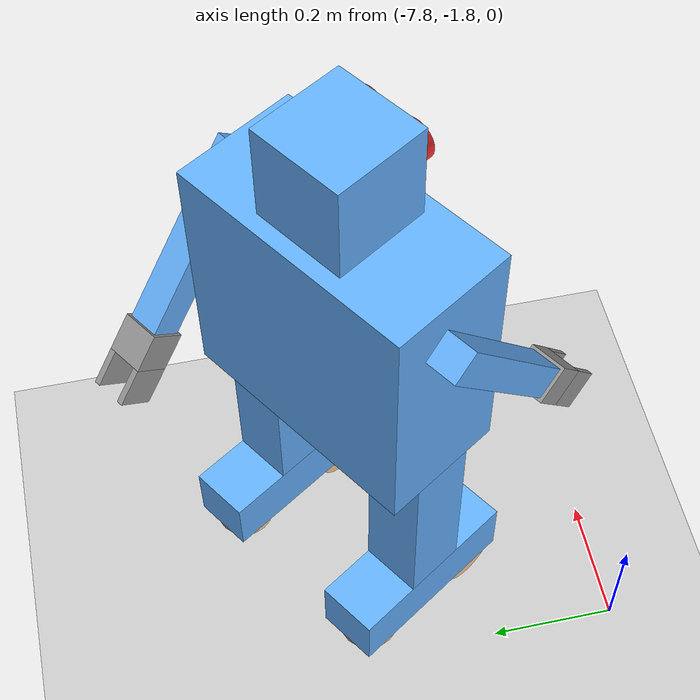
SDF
<sdf version="1.6">
 <world name="default">
  <model name="ground_plane">
   <static>1</static>
   <link name="link">
    <collision name="collision">
     <geometry><plane><normal>0 0 1</normal><size>100 100</size></plane></geometry>
     <surface><friction><ode><mu>100</mu><mu2>50</mu2></ode></friction></surface>
    </collision>
    <visual name="visual">
     <cast_shadows>0</cast_shadows>
     <geometry><plane><normal>0 0 1</normal><size>100 100</size></plane></geometry>
     <material>
      <script><uri>file://media/materials/scripts/gazebo.material</uri><name>Gazebo/Grey</name></script>
     </material>
    </visual>
   </link>
  </model>
  <model name="Vintage_Robot">
   <link name="link_0_clone">
    <pose>0.15 -0 0.1 0 -0 0</pose>
    <inertial>
     <mass>1</mass>
     <inertia>
      <ixx>0.166667</ixx>
      <ixy>0</ixy>
      <ixz>0</ixz>
      <iyy>0.166667</iyy>
      <iyz>0</iyz>
      <izz>0.166667</izz>
     </inertia>
    </inertial>
    <visual name="visual">
     <geometry><box><size>0.1 0.3 0.1</size></box></geometry>
     <material>
      <lighting>1</lighting>
      <script><uri>file://media/materials/scripts/gazebo.material</uri><name>Gazebo/Grey</name></script>
      <shader type="pixel"><normal_map>__default__</normal_map></shader>
      <ambient>0.4 0.7 1 1</ambient>
      <diffuse>0.7 0.7 0.7 1</diffuse>
      <specular>0.01 0.01 0.01 1</specular>
      <emissive>0 0 0 1</emissive>
     </material>
    </visual>
    <collision name="collision">
     <geometry><box><size>0.1 0.3 0.1</size></box></geometry>
     <surface>
      <friction>
       <ode><mu>1</mu><mu2>1</mu2><fdir1>0 0 0</fdir1><slip1>0</slip1><slip2>0</slip2></ode>
       <torsional>
        <coefficient>1</coefficient>
        <patch_radius>0</patch_radius>
        <surface_radius>0</surface_radius>
        <use_patch_radius>1</use_patch_radius>
        <ode><slip>0</slip></ode>
       </torsional>
      </friction>
      <bounce><restitution_coefficient>0</restitution_coefficient><threshold>1e+06</threshold></bounce>
      <contact>
       <collide_without_contact>0</collide_without_contact>
       <collide_without_contact_bitmask>1</collide_without_contact_bitmask>
       <collide_bitmask>1</collide_bitmask>
       <ode>
        <soft_cfm>0</soft_cfm>
        <soft_erp>0.2</soft_erp>
        <kp>1e+13</kp>
        <kd>1</kd>
        <max_vel>0.01</max_vel>
        <min_depth>0</min_depth>
       </ode>
       <bullet>
        <split_impulse>1</split_impulse>
        <split_impulse_penetration_threshold>-0.01</split_impulse_penetration_threshold>
        <soft_cfm>0</soft_cfm>
        <soft_erp>0.2</soft_erp>
        <kp>1e+13</kp>
        <kd>1</kd>
       </bullet>
      </contact>
     </surface>
    </collision>
   </link>
   <link name="link_0">
    <pose>0.225 0 0.75 0.7 -0 0</pose>
    <inertial>
     <mass>1</mass>
     <inertia>
      <ixx>0.166667</ixx>
      <ixy>0</ixy>
      <ixz>0</ixz>
      <iyy>0.166667</iyy>
      <iyz>0</iyz>
      <izz>0.166667</izz>
     </inertia>
    </inertial>
    <visual name="visual">
     <pose>0 0 -0.1 0 -0 0</pose>
     <geometry><box><size>0.05 0.05 0.3</size></box></geometry>
     <material>
      <lighting>1</lighting>
      <script><uri>file://media/materials/scripts/gazebo.material</uri><name>Gazebo/Grey</name></script>
      <shader type="pixel"><normal_map>__default__</normal_map></shader>
      <ambient>0.4 0.7 1 1</ambient>
      <diffuse>0.7 0.7 0.7 1</diffuse>
      <specular>0.01 0.01 0.01 1</specular>
      <emissive>0 0 0 1</emissive>
     </material>
    </visual>
    <collision name="collision">
     <pose>0 0 -0.1 0 -0 0</pose>
     <geometry><box><size>0.05 0.05 0.3</size></box></geometry>
     <surface>
      <friction>
       <ode><mu>1</mu><mu2>1</mu2><fdir1>0 0 0</fdir1><slip1>0</slip1><slip2>0</slip2></ode>
       <torsional>
        <coefficient>1</coefficient>
        <patch_radius>0</patch_radius>
        <surface_radius>0</surface_radius>
        <use_patch_radius>1</use_patch_radius>
        <ode><slip>0</slip></ode>
       </torsional>
      </friction>
      <bounce><restitution_coefficient>0</restitution_coefficient><threshold>1e+06</threshold></bounce>
      <contact>
       <collide_without_contact>0</collide_without_contact>
       <collide_without_contact_bitmask>1</collide_without_contact_bitmask>
       <collide_bitmask>1</collide_bitmask>
       <ode>
        <soft_cfm>0</soft_cfm>
        <soft_erp>0.2</soft_erp>
        <kp>1e+13</kp>
        <kd>1</kd>
        <max_vel>0.01</max_vel>
        <min_depth>0</min_depth>
       </ode>
       <bullet>
        <split_impulse>1</split_impulse>
        <split_impulse_penetration_threshold>-0.01</split_impulse_penetration_threshold>
        <soft_cfm>0</soft_cfm>
        <soft_erp>0.2</soft_erp>
        <kp>1e+13</kp>
        <kd>1</kd>
       </bullet>
      </contact>
     </surface>
    </collision>
   </link>
   <link name="link_0_0">
    <pose>0.04 0.08 0.945 1.5707 0 -3.14159</pose>
    <inertial>
     <mass>1</mass>
     <inertia><ixx>0.145833</ixx><ixy>0</ixy><ixz>0</ixz><iyy>0.145833</iyy><iyz>0</iyz><izz>0.125</izz></inertia>
    </inertial>
    <visual name="visual">
     <geometry><cylinder><radius>0.03</radius><length>0.03</length></cylinder></geometry>
     <material>
      <lighting>1</lighting>
      <script><uri>file://media/materials/scripts/gazebo.material</uri><name>Gazebo/Grey</name></script>
      <shader type="pixel"><normal_map>__default__</normal_map></shader>
      <ambient>1 0.2 0.2 1</ambient>
      <diffuse>0.7 0.7 0.7 1</diffuse>
      <specular>0.01 0.01 0.01 1</specular>
      <emissive>0 0 0 1</emissive>
     </material>
    </visual>
    <collision name="collision">
     <geometry><cylinder><radius>0.03</radius><length>0.03</length></cylinder></geometry>
     <surface>
      <friction>
       <ode><mu>1</mu><mu2>1</mu2><fdir1>0 0 0</fdir1><slip1>0</slip1><slip2>0</slip2></ode>
       <torsional>
        <coefficient>1</coefficient>
        <patch_radius>0</patch_radius>
        <surface_radius>0</surface_radius>
        <use_patch_radius>1</use_patch_radius>
        <ode><slip>0</slip></ode>
       </torsional>
      </friction>
      <bounce><restitution_coefficient>0</restitution_coefficient><threshold>1e+06</threshold></bounce>
      <contact>
       <collide_without_contact>0</collide_without_contact>
       <collide_without_contact_bitmask>1</collide_without_contact_bitmask>
       <collide_bitmask>1</collide_bitmask>
       <ode>
        <soft_cfm>0</soft_cfm>
        <soft_erp>0.2</soft_erp>
        <kp>1e+13</kp>
        <kd>1</kd>
        <max_vel>0.01</max_vel>
        <min_depth>0</min_depth>
       </ode>
       <bullet>
        <split_impulse>1</split_impulse>
        <split_impulse_penetration_threshold>-0.01</split_impulse_penetration_threshold>
        <soft_cfm>0</soft_cfm>
        <soft_erp>0.2</soft_erp>
        <kp>1e+13</kp>
        <kd>1</kd>
       </bullet>
      </contact>
     </surface>
    </collision>
   </link>
   <link name="link_0_0_clone">
    <pose>-0.04 0.08 0.945 1.5707 -0 5e-06</pose>
    <inertial>
     <mass>1</mass>
     <inertia><ixx>0.145833</ixx><ixy>0</ixy><ixz>0</ixz><iyy>0.145833</iyy><iyz>0</iyz><izz>0.125</izz></inertia>
    </inertial>
    <visual name="visual_0">
     <geometry><cylinder><radius>0.03</radius><length>0.03</length></cylinder></geometry>
     <material>
      <lighting>1</lighting>
      <script><uri>file://media/materials/scripts/gazebo.material</uri><name>Gazebo/Grey</name></script>
      <shader type="pixel"><normal_map>__default__</normal_map></shader>
      <ambient>1 0.2 0.2 1</ambient>
      <diffuse>0.7 0.7 0.7 1</diffuse>
      <specular>0.01 0.01 0.01 1</specular>
      <emissive>0 0 0 1</emissive>
     </material>
    </visual>
    <collision name="collision">
     <geometry><cylinder><radius>0.03</radius><length>0.03</length></cylinder></geometry>
     <surface>
      <friction>
       <ode><mu>1</mu><mu2>1</mu2><fdir1>0 0 0</fdir1><slip1>0</slip1><slip2>0</slip2></ode>
       <torsional>
        <coefficient>1</coefficient>
        <patch_radius>0</patch_radius>
        <surface_radius>0</surface_radius>
        <use_patch_radius>1</use_patch_radius>
        <ode><slip>0</slip></ode>
       </torsional>
      </friction>
      <bounce><restitution_coefficient>0</restitution_coefficient><threshold>1e+06</threshold></bounce>
      <contact>
       <collide_without_contact>0</collide_without_contact>
       <collide_without_contact_bitmask>1</collide_without_contact_bitmask>
       <collide_bitmask>1</collide_bitmask>
       <ode>
        <soft_cfm>0</soft_cfm>
        <soft_erp>0.2</soft_erp>
        <kp>1e+13</kp>
        <kd>1</kd>
        <max_vel>0.01</max_vel>
        <min_depth>0</min_depth>
       </ode>
       <bullet>
        <split_impulse>1</split_impulse>
        <split_impulse_penetration_threshold>-0.01</split_impulse_penetration_threshold>
        <soft_cfm>0</soft_cfm>
        <soft_erp>0.2</soft_erp>
        <kp>1e+13</kp>
        <kd>1</kd>
       </bullet>
      </contact>
     </surface>
    </collision>
   </link>
   <link name="link_0_1">
    <pose>-0 0 0.925 0 -0 0</pose>
    <inertial>
     <mass>1</mass>
     <inertia>
      <ixx>0.166667</ixx>
      <ixy>0</ixy>
      <ixz>0</ixz>
      <iyy>0.166667</iyy>
      <iyz>0</iyz>
      <izz>0.166667</izz>
     </inertia>
    </inertial>
    <visual name="visual">
     <geometry><box><size>0.15 0.15 0.15</size></box></geometry>
     <material>
      <lighting>1</lighting>
      <script><uri>file://media/materials/scripts/gazebo.material</uri><name>Gazebo/Grey</name></script>
      <shader type="pixel"><normal_map>__default__</normal_map></shader>
      <ambient>0.4 0.7 1 1</ambient>
      <diffuse>0.7 0.7 0.7 1</diffuse>
      <specular>0.01 0.01 0.01 1</specular>
      <emissive>0 0 0 1</emissive>
     </material>
    </visual>
    <collision name="collision">
     <geometry><box><size>0.15 0.15 0.15</size></box></geometry>
     <surface>
      <friction>
       <ode><mu>1</mu><mu2>1</mu2><fdir1>0 0 0</fdir1><slip1>0</slip1><slip2>0</slip2></ode>
       <torsional>
        <coefficient>1</coefficient>
        <patch_radius>0</patch_radius>
        <surface_radius>0</surface_radius>
        <use_patch_radius>1</use_patch_radius>
        <ode><slip>0</slip></ode>
       </torsional>
      </friction>
      <bounce><restitution_coefficient>0</restitution_coefficient><threshold>1e+06</threshold></bounce>
      <contact>
       <collide_without_contact>0</collide_without_contact>
       <collide_without_contact_bitmask>1</collide_without_contact_bitmask>
       <collide_bitmask>1</collide_bitmask>
       <ode>
        <soft_cfm>0</soft_cfm>
        <soft_erp>0.2</soft_erp>
        <kp>1e+13</kp>
        <kd>1</kd>
        <max_vel>0.01</max_vel>
        <min_depth>0</min_depth>
       </ode>
       <bullet>
        <split_impulse>1</split_impulse>
        <split_impulse_penetration_threshold>-0.01</split_impulse_penetration_threshold>
        <soft_cfm>0</soft_cfm>
        <soft_erp>0.2</soft_erp>
        <kp>1e+13</kp>
        <kd>1</kd>
       </bullet>
      </contact>
     </surface>
    </collision>
   </link>
   <link name="link_0_clone_0">
    <pose>-0.15 -0 0.1 0 -0 0</pose>
    <inertial>
     <mass>1</mass>
     <inertia>
      <ixx>0.166667</ixx>
      <ixy>0</ixy>
      <ixz>0</ixz>
      <iyy>0.166667</iyy>
      <iyz>0</iyz>
      <izz>0.166667</izz>
     </inertia>
    </inertial>
    <visual name="visual">
     <geometry><box><size>0.1 0.3 0.1</size></box></geometry>
     <material>
      <lighting>1</lighting>
      <script><uri>file://media/materials/scripts/gazebo.material</uri><name>Gazebo/Grey</name></script>
      <shader type="pixel"><normal_map>__default__</normal_map></shader>
      <ambient>0.4 0.7 1 1</ambient>
      <diffuse>0.7 0.7 0.7 1</diffuse>
      <specular>0.01 0.01 0.01 1</specular>
      <emissive>0 0 0 1</emissive>
     </material>
    </visual>
    <collision name="collision">
     <geometry><box><size>0.1 0.3 0.1</size></box></geometry>
     <surface>
      <friction>
       <ode><mu>1</mu><mu2>1</mu2><fdir1>0 0 0</fdir1><slip1>0</slip1><slip2>0</slip2></ode>
       <torsional>
        <coefficient>1</coefficient>
        <patch_radius>0</patch_radius>
        <surface_radius>0</surface_radius>
        <use_patch_radius>1</use_patch_radius>
        <ode><slip>0</slip></ode>
       </torsional>
      </friction>
      <bounce><restitution_coefficient>0</restitution_coefficient><threshold>1e+06</threshold></bounce>
      <contact>
       <collide_without_contact>0</collide_without_contact>
       <collide_without_contact_bitmask>1</collide_without_contact_bitmask>
       <collide_bitmask>1</collide_bitmask>
       <ode>
        <soft_cfm>0</soft_cfm>
        <soft_erp>0.2</soft_erp>
        <kp>1e+13</kp>
        <kd>1</kd>
        <max_vel>0.01</max_vel>
        <min_depth>0</min_depth>
       </ode>
       <bullet>
        <split_impulse>1</split_impulse>
        <split_impulse_penetration_threshold>-0.01</split_impulse_penetration_threshold>
        <soft_cfm>0</soft_cfm>
        <soft_erp>0.2</soft_erp>
        <kp>1e+13</kp>
        <kd>1</kd>
       </bullet>
      </contact>
     </surface>
    </collision>
   </link>
   <link name="link_0_clone_1">
    <pose>-0.225 0 0.75 -0.7 -0 -0</pose>
    <inertial>
     <mass>1</mass>
     <inertia>
      <ixx>0.166667</ixx>
      <ixy>0</ixy>
      <ixz>0</ixz>
      <iyy>0.166667</iyy>
      <iyz>0</iyz>
      <izz>0.166667</izz>
     </inertia>
    </inertial>
    <visual name="visual">
     <pose>0 0 -0.1 0 -0 0</pose>
     <geometry><box><size>0.05 0.05 0.3</size></box></geometry>
     <material>
      <lighting>1</lighting>
      <script><uri>file://media/materials/scripts/gazebo.material</uri><name>Gazebo/Grey</name></script>
      <shader type="pixel"><normal_map>__default__</normal_map></shader>
      <ambient>0.4 0.7 1 1</ambient>
      <diffuse>0.7 0.7 0.7 1</diffuse>
      <specular>0.01 0.01 0.01 1</specular>
      <emissive>0 0 0 1</emissive>
     </material>
    </visual>
    <collision name="collision">
     <pose>0 0 -0.1 0 -0 0</pose>
     <geometry><box><size>0.05 0.05 0.3</size></box></geometry>
     <surface>
      <friction>
       <ode><mu>1</mu><mu2>1</mu2><fdir1>0 0 0</fdir1><slip1>0</slip1><slip2>0</slip2></ode>
       <torsional>
        <coefficient>1</coefficient>
        <patch_radius>0</patch_radius>
        <surface_radius>0</surface_radius>
        <use_patch_radius>1</use_patch_radius>
        <ode><slip>0</slip></ode>
       </torsional>
      </friction>
      <bounce><restitution_coefficient>0</restitution_coefficient><threshold>1e+06</threshold></bounce>
      <contact>
       <collide_without_contact>0</collide_without_contact>
       <collide_without_contact_bitmask>1</collide_without_contact_bitmask>
       <collide_bitmask>1</collide_bitmask>
       <ode>
        <soft_cfm>0</soft_cfm>
        <soft_erp>0.2</soft_erp>
        <kp>1e+13</kp>
        <kd>1</kd>
        <max_vel>0.01</max_vel>
        <min_depth>0</min_depth>
       </ode>
       <bullet>
        <split_impulse>1</split_impulse>
        <split_impulse_penetration_threshold>-0.01</split_impulse_penetration_threshold>
        <soft_cfm>0</soft_cfm>
        <soft_erp>0.2</soft_erp>
        <kp>1e+13</kp>
        <kd>1</kd>
       </bullet>
      </contact>
     </surface>
    </collision>
   </link>
   <link name="link_1">
    <pose>0.25 0.219034 0.489954 0.7 -0 0</pose>
    <inertial>
     <mass>1</mass>
     <inertia>
      <ixx>0.166667</ixx>
      <ixy>0</ixy>
      <ixz>0</ixz>
      <iyy>0.166667</iyy>
      <iyz>0</iyz>
      <izz>0.166667</izz>
     </inertia>
    </inertial>
    <visual name="visual">
     <geometry><box><size>0.01 0.06 0.06</size></box></geometry>
     <material>
      <lighting>1</lighting>
      <script><uri>file://media/materials/scripts/gazebo.material</uri><name>Gazebo/Grey</name></script>
      <shader type="pixel"><normal_map>__default__</normal_map></shader>
      <ambient>0.75 0.75 0.75 1</ambient>
      <diffuse>0.7 0.7 0.7 1</diffuse>
      <specular>0.01 0.01 0.01 1</specular>
      <emissive>0 0 0 1</emissive>
     </material>
    </visual>
    <collision name="collision">
     <geometry><box><size>0.01 0.06 0.06</size></box></geometry>
     <surface>
      <friction>
       <ode><mu>1</mu><mu2>1</mu2><fdir1>0 0 0</fdir1><slip1>0</slip1><slip2>0</slip2></ode>
       <torsional>
        <coefficient>1</coefficient>
        <patch_radius>0</patch_radius>
        <surface_radius>0</surface_radius>
        <use_patch_radius>1</use_patch_radius>
        <ode><slip>0</slip></ode>
       </torsional>
      </friction>
      <bounce><restitution_coefficient>0</restitution_coefficient><threshold>1e+06</threshold></bounce>
      <contact>
       <collide_without_contact>0</collide_without_contact>
       <collide_without_contact_bitmask>1</collide_without_contact_bitmask>
       <collide_bitmask>1</collide_bitmask>
       <ode>
        <soft_cfm>0</soft_cfm>
        <soft_erp>0.2</soft_erp>
        <kp>1e+13</kp>
        <kd>1</kd>
        <max_vel>0.01</max_vel>
        <min_depth>0</min_depth>
       </ode>
       <bullet>
        <split_impulse>1</split_impulse>
        <split_impulse_penetration_threshold>-0.01</split_impulse_penetration_threshold>
        <soft_cfm>0</soft_cfm>
        <soft_erp>0.2</soft_erp>
        <kp>1e+13</kp>
        <kd>1</kd>
       </bullet>
      </contact>
     </surface>
    </collision>
   </link>
   <link name="link_1_clone">
    <pose>0.120005 0.1 0.05 0.001508 1.5707 0.001508</pose>
    <inertial>
     <mass>1</mass>
     <inertia><ixx>0.145833</ixx><ixy>0</ixy><ixz>0</ixz><iyy>0.145833</iyy><iyz>0</iyz><izz>0.125</izz></inertia>
    </inertial>
    <visual name="visual">
     <geometry><cylinder><radius>0.05</radius><length>0.02</length></cylinder></geometry>
     <material>
      <lighting>1</lighting>
      <script><uri>file://media/materials/scripts/gazebo.material</uri><name>Gazebo/Grey</name></script>
      <shader type="pixel"><normal_map>__default__</normal_map></shader>
      <ambient>1 0.8 0.6 1</ambient>
      <diffuse>0.7 0.7 0.7 1</diffuse>
      <specular>0.01 0.01 0.01 1</specular>
      <emissive>0 0 0 1</emissive>
     </material>
    </visual>
    <collision name="collision">
     <geometry><cylinder><radius>0.05</radius><length>0.02</length></cylinder></geometry>
     <surface>
      <friction>
       <ode><mu>1</mu><mu2>1</mu2><fdir1>0 0 0</fdir1><slip1>0</slip1><slip2>0</slip2></ode>
       <torsional>
        <coefficient>1</coefficient>
        <patch_radius>0</patch_radius>
        <surface_radius>0</surface_radius>
        <use_patch_radius>1</use_patch_radius>
        <ode><slip>0</slip></ode>
       </torsional>
      </friction>
      <bounce><restitution_coefficient>0</restitution_coefficient><threshold>1e+06</threshold></bounce>
      <contact>
       <collide_without_contact>0</collide_without_contact>
       <collide_without_contact_bitmask>1</collide_without_contact_bitmask>
       <collide_bitmask>1</collide_bitmask>
       <ode>
        <soft_cfm>0</soft_cfm>
        <soft_erp>0.2</soft_erp>
        <kp>1e+13</kp>
        <kd>1</kd>
        <max_vel>0.01</max_vel>
        <min_depth>0</min_depth>
       </ode>
       <bullet>
        <split_impulse>1</split_impulse>
        <split_impulse_penetration_threshold>-0.01</split_impulse_penetration_threshold>
        <soft_cfm>0</soft_cfm>
        <soft_erp>0.2</soft_erp>
        <kp>1e+13</kp>
        <kd>1</kd>
       </bullet>
      </contact>
     </surface>
    </collision>
   </link>
   <link name="link_1_clone_0">
    <pose>-0.179995 0.1 0.05 0.000879 1.5707 0.000879</pose>
    <inertial>
     <mass>1</mass>
     <inertia><ixx>0.145833</ixx><ixy>0</ixy><ixz>0</ixz><iyy>0.145833</iyy><iyz>0</iyz><izz>0.125</izz></inertia>
    </inertial>
    <visual name="visual">
     <geometry><cylinder><radius>0.05</radius><length>0.02</length></cylinder></geometry>
     <material>
      <lighting>1</lighting>
      <script><uri>file://media/materials/scripts/gazebo.material</uri><name>Gazebo/Grey</name></script>
      <shader type="pixel"><normal_map>__default__</normal_map></shader>
      <ambient>1 0.8 0.6 1</ambient>
      <diffuse>0.7 0.7 0.7 1</diffuse>
      <specular>0.01 0.01 0.01 1</specular>
      <emissive>0 0 0 1</emissive>
     </material>
    </visual>
    <collision name="collision">
     <geometry><cylinder><radius>0.05</radius><length>0.02</length></cylinder></geometry>
     <surface>
      <friction>
       <ode><mu>1</mu><mu2>1</mu2><fdir1>0 0 0</fdir1><slip1>0</slip1><slip2>0</slip2></ode>
       <torsional>
        <coefficient>1</coefficient>
        <patch_radius>0</patch_radius>
        <surface_radius>0</surface_radius>
        <use_patch_radius>1</use_patch_radius>
        <ode><slip>0</slip></ode>
       </torsional>
      </friction>
      <bounce><restitution_coefficient>0</restitution_coefficient><threshold>1e+06</threshold></bounce>
      <contact>
       <collide_without_contact>0</collide_without_contact>
       <collide_without_contact_bitmask>1</collide_without_contact_bitmask>
       <collide_bitmask>1</collide_bitmask>
       <ode>
        <soft_cfm>0</soft_cfm>
        <soft_erp>0.2</soft_erp>
        <kp>1e+13</kp>
        <kd>1</kd>
        <max_vel>0.01</max_vel>
        <min_depth>0</min_depth>
       </ode>
       <bullet>
        <split_impulse>1</split_impulse>
        <split_impulse_penetration_threshold>-0.01</split_impulse_penetration_threshold>
        <soft_cfm>0</soft_cfm>
        <soft_erp>0.2</soft_erp>
        <kp>1e+13</kp>
        <kd>1</kd>
       </bullet>
      </contact>
     </surface>
    </collision>
   </link>
   <link name="link_1_clone_0_clone">
    <pose>-0.120005 0.1 0.05 0.000879 1.5707 0.000879</pose>
    <inertial>
     <mass>1</mass>
     <inertia><ixx>0.145833</ixx><ixy>0</ixy><ixz>0</ixz><iyy>0.145833</iyy><iyz>0</iyz><izz>0.125</izz></inertia>
    </inertial>
    <visual name="visual">
     <geometry><cylinder><radius>0.05</radius><length>0.02</length></cylinder></geometry>
     <material>
      <lighting>1</lighting>
      <script><uri>file://media/materials/scripts/gazebo.material</uri><name>Gazebo/Grey</name></script>
      <shader type="pixel"><normal_map>__default__</normal_map></shader>
      <ambient>1 0.8 0.6 1</ambient>
      <diffuse>0.7 0.7 0.7 1</diffuse>
      <specular>0.01 0.01 0.01 1</specular>
      <emissive>0 0 0 1</emissive>
     </material>
    </visual>
    <collision name="collision">
     <geometry><cylinder><radius>0.05</radius><length>0.02</length></cylinder></geometry>
     <surface>
      <friction>
       <ode><mu>1</mu><mu2>1</mu2><fdir1>0 0 0</fdir1><slip1>0</slip1><slip2>0</slip2></ode>
       <torsional>
        <coefficient>1</coefficient>
        <patch_radius>0</patch_radius>
        <surface_radius>0</surface_radius>
        <use_patch_radius>1</use_patch_radius>
        <ode><slip>0</slip></ode>
       </torsional>
      </friction>
      <bounce><restitution_coefficient>0</restitution_coefficient><threshold>1e+06</threshold></bounce>
      <contact>
       <collide_without_contact>0</collide_without_contact>
       <collide_without_contact_bitmask>1</collide_without_contact_bitmask>
       <collide_bitmask>1</collide_bitmask>
       <ode>
        <soft_cfm>0</soft_cfm>
        <soft_erp>0.2</soft_erp>
        <kp>1e+13</kp>
        <kd>1</kd>
        <max_vel>0.01</max_vel>
        <min_depth>0</min_depth>
       </ode>
       <bullet>
        <split_impulse>1</split_impulse>
        <split_impulse_penetration_threshold>-0.01</split_impulse_penetration_threshold>
        <soft_cfm>0</soft_cfm>
        <soft_erp>0.2</soft_erp>
        <kp>1e+13</kp>
        <kd>1</kd>
       </bullet>
      </contact>
     </surface>
    </collision>
   </link>
   <link name="link_1_clone_1">
    <pose>0.2 0.219034 0.489954 0.7 -0 0</pose>
    <inertial>
     <mass>1</mass>
     <inertia>
      <ixx>0.166667</ixx>
      <ixy>0</ixy>
      <ixz>0</ixz>
      <iyy>0.166667</iyy>
      <iyz>0</iyz>
      <izz>0.166667</izz>
     </inertia>
    </inertial>
    <visual name="visual">
     <geometry><box><size>0.01 0.06 0.06</size></box></geometry>
     <material>
      <lighting>1</lighting>
      <script><uri>file://media/materials/scripts/gazebo.material</uri><name>Gazebo/Grey</name></script>
      <shader type="pixel"><normal_map>__default__</normal_map></shader>
      <ambient>0.75 0.75 0.75 1</ambient>
      <diffuse>0.7 0.7 0.7 1</diffuse>
      <specular>0.01 0.01 0.01 1</specular>
      <emissive>0 0 0 1</emissive>
     </material>
    </visual>
    <collision name="collision">
     <geometry><box><size>0.01 0.06 0.06</size></box></geometry>
     <surface>
      <friction>
       <ode><mu>1</mu><mu2>1</mu2><fdir1>0 0 0</fdir1><slip1>0</slip1><slip2>0</slip2></ode>
       <torsional>
        <coefficient>1</coefficient>
        <patch_radius>0</patch_radius>
        <surface_radius>0</surface_radius>
        <use_patch_radius>1</use_patch_radius>
        <ode><slip>0</slip></ode>
       </torsional>
      </friction>
      <bounce><restitution_coefficient>0</restitution_coefficient><threshold>1e+06</threshold></bounce>
      <contact>
       <collide_without_contact>0</collide_without_contact>
       <collide_without_contact_bitmask>1</collide_without_contact_bitmask>
       <collide_bitmask>1</collide_bitmask>
       <ode>
        <soft_cfm>0</soft_cfm>
        <soft_erp>0.2</soft_erp>
        <kp>1e+13</kp>
        <kd>1</kd>
        <max_vel>0.01</max_vel>
        <min_depth>0</min_depth>
       </ode>
       <bullet>
        <split_impulse>1</split_impulse>
        <split_impulse_penetration_threshold>-0.01</split_impulse_penetration_threshold>
        <soft_cfm>0</soft_cfm>
        <soft_erp>0.2</soft_erp>
        <kp>1e+13</kp>
        <kd>1</kd>
       </bullet>
      </contact>
     </surface>
    </collision>
   </link>
   <link name="link_1_clone_1_clone">
    <pose>-0.2 -0.219034 0.489954 -0.7 -0 -0</pose>
    <inertial>
     <mass>1</mass>
     <inertia>
      <ixx>0.166667</ixx>
      <ixy>0</ixy>
      <ixz>0</ixz>
      <iyy>0.166667</iyy>
      <iyz>0</iyz>
      <izz>0.166667</izz>
     </inertia>
    </inertial>
    <visual name="visual">
     <geometry><box><size>0.01 0.06 0.06</size></box></geometry>
     <material>
      <lighting>1</lighting>
      <script><uri>file://media/materials/scripts/gazebo.material</uri><name>Gazebo/Grey</name></script>
      <shader type="pixel"><normal_map>__default__</normal_map></shader>
      <ambient>0.75 0.75 0.75 1</ambient>
      <diffuse>0.7 0.7 0.7 1</diffuse>
      <specular>0.01 0.01 0.01 1</specular>
      <emissive>0 0 0 1</emissive>
     </material>
    </visual>
    <collision name="collision">
     <geometry><box><size>0.01 0.06 0.06</size></box></geometry>
     <surface>
      <friction>
       <ode><mu>1</mu><mu2>1</mu2><fdir1>0 0 0</fdir1><slip1>0</slip1><slip2>0</slip2></ode>
       <torsional>
        <coefficient>1</coefficient>
        <patch_radius>0</patch_radius>
        <surface_radius>0</surface_radius>
        <use_patch_radius>1</use_patch_radius>
        <ode><slip>0</slip></ode>
       </torsional>
      </friction>
      <bounce><restitution_coefficient>0</restitution_coefficient><threshold>1e+06</threshold></bounce>
      <contact>
       <collide_without_contact>0</collide_without_contact>
       <collide_without_contact_bitmask>1</collide_without_contact_bitmask>
       <collide_bitmask>1</collide_bitmask>
       <ode>
        <soft_cfm>0</soft_cfm>
        <soft_erp>0.2</soft_erp>
        <kp>1e+13</kp>
        <kd>1</kd>
        <max_vel>0.01</max_vel>
        <min_depth>0</min_depth>
       </ode>
       <bullet>
        <split_impulse>1</split_impulse>
        <split_impulse_penetration_threshold>-0.01</split_impulse_penetration_threshold>
        <soft_cfm>0</soft_cfm>
        <soft_erp>0.2</soft_erp>
        <kp>1e+13</kp>
        <kd>1</kd>
       </bullet>
      </contact>
     </surface>
    </collision>
   </link>
   <link name="link_1_clone_2">
    <pose>-0.25 -0.219034 0.489954 -0.7 -0 -0</pose>
    <inertial>
     <mass>1</mass>
     <inertia>
      <ixx>0.166667</ixx>
      <ixy>0</ixy>
      <ixz>0</ixz>
      <iyy>0.166667</iyy>
      <iyz>0</iyz>
      <izz>0.166667</izz>
     </inertia>
    </inertial>
    <visual name="visual">
     <geometry><box><size>0.01 0.06 0.06</size></box></geometry>
     <material>
      <lighting>1</lighting>
      <script><uri>file://media/materials/scripts/gazebo.material</uri><name>Gazebo/Grey</name></script>
      <shader type="pixel"><normal_map>__default__</normal_map></shader>
      <ambient>0.75 0.75 0.75 1</ambient>
      <diffuse>0.7 0.7 0.7 1</diffuse>
      <specular>0.01 0.01 0.01 1</specular>
      <emissive>0 0 0 1</emissive>
     </material>
    </visual>
    <collision name="collision">
     <geometry><box><size>0.01 0.06 0.06</size></box></geometry>
     <surface>
      <friction>
       <ode><mu>1</mu><mu2>1</mu2><fdir1>0 0 0</fdir1><slip1>0</slip1><slip2>0</slip2></ode>
       <torsional>
        <coefficient>1</coefficient>
        <patch_radius>0</patch_radius>
        <surface_radius>0</surface_radius>
        <use_patch_radius>1</use_patch_radius>
        <ode><slip>0</slip></ode>
       </torsional>
      </friction>
      <bounce><restitution_coefficient>0</restitution_coefficient><threshold>1e+06</threshold></bounce>
      <contact>
       <collide_without_contact>0</collide_without_contact>
       <collide_without_contact_bitmask>1</collide_without_contact_bitmask>
       <collide_bitmask>1</collide_bitmask>
       <ode>
        <soft_cfm>0</soft_cfm>
        <soft_erp>0.2</soft_erp>
        <kp>1e+13</kp>
        <kd>1</kd>
        <max_vel>0.01</max_vel>
        <min_depth>0</min_depth>
       </ode>
       <bullet>
        <split_impulse>1</split_impulse>
        <split_impulse_penetration_threshold>-0.01</split_impulse_penetration_threshold>
        <soft_cfm>0</soft_cfm>
        <soft_erp>0.2</soft_erp>
        <kp>1e+13</kp>
        <kd>1</kd>
       </bullet>
      </contact>
     </surface>
    </collision>
   </link>
   <link name="link_1_clone_clone">
    <pose>0.179995 0.1 0.05 0.001508 1.5707 0.001508</pose>
    <inertial>
     <mass>1</mass>
     <inertia><ixx>0.145833</ixx><ixy>0</ixy><ixz>0</ixz><iyy>0.145833</iyy><iyz>0</iyz><izz>0.125</izz></inertia>
    </inertial>
    <visual name="visual">
     <geometry><cylinder><radius>0.05</radius><length>0.02</length></cylinder></geometry>
     <material>
      <lighting>1</lighting>
      <script><uri>file://media/materials/scripts/gazebo.material</uri><name>Gazebo/Grey</name></script>
      <shader type="pixel"><normal_map>__default__</normal_map></shader>
      <ambient>1 0.8 0.6 1</ambient>
      <diffuse>0.7 0.7 0.7 1</diffuse>
      <specular>0.01 0.01 0.01 1</specular>
      <emissive>0 0 0 1</emissive>
     </material>
    </visual>
    <collision name="collision">
     <geometry><cylinder><radius>0.05</radius><length>0.02</length></cylinder></geometry>
     <surface>
      <friction>
       <ode><mu>1</mu><mu2>1</mu2><fdir1>0 0 0</fdir1><slip1>0</slip1><slip2>0</slip2></ode>
       <torsional>
        <coefficient>1</coefficient>
        <patch_radius>0</patch_radius>
        <surface_radius>0</surface_radius>
        <use_patch_radius>1</use_patch_radius>
        <ode><slip>0</slip></ode>
       </torsional>
      </friction>
      <bounce><restitution_coefficient>0</restitution_coefficient><threshold>1e+06</threshold></bounce>
      <contact>
       <collide_without_contact>0</collide_without_contact>
       <collide_without_contact_bitmask>1</collide_without_contact_bitmask>
       <collide_bitmask>1</collide_bitmask>
       <ode>
        <soft_cfm>0</soft_cfm>
        <soft_erp>0.2</soft_erp>
        <kp>1e+13</kp>
        <kd>1</kd>
        <max_vel>0.01</max_vel>
        <min_depth>0</min_depth>
       </ode>
       <bullet>
        <split_impulse>1</split_impulse>
        <split_impulse_penetration_threshold>-0.01</split_impulse_penetration_threshold>
        <soft_cfm>0</soft_cfm>
        <soft_erp>0.2</soft_erp>
        <kp>1e+13</kp>
        <kd>1</kd>
       </bullet>
      </contact>
     </surface>
    </collision>
   </link>
   <link name="link_2">
    <pose>0.225 0.180381 0.535844 0.7 -0 0</pose>
    <inertial>
     <mass>1</mass>
     <inertia>
      <ixx>0.166667</ixx>
      <ixy>0</ixy>
      <ixz>0</ixz>
      <iyy>0.166667</iyy>
      <iyz>0</iyz>
      <izz>0.166667</izz>
     </inertia>
    </inertial>
    <visual name="visual">
     <geometry><box><size>0.06 0.06 0.06</size></box></geometry>
     <material>
      <lighting>1</lighting>
      <script><uri>file://media/materials/scripts/gazebo.material</uri><name>Gazebo/Grey</name></script>
      <shader type="pixel"><normal_map>__default__</normal_map></shader>
      <ambient>0.75 0.75 0.75 1</ambient>
      <diffuse>0.7 0.7 0.7 1</diffuse>
      <specular>0.01 0.01 0.01 1</specular>
      <emissive>0 0 0 1</emissive>
     </material>
    </visual>
    <collision name="collision">
     <geometry><box><size>0.06 0.06 0.06</size></box></geometry>
     <surface>
      <friction>
       <ode><mu>1</mu><mu2>1</mu2><fdir1>0 0 0</fdir1><slip1>0</slip1><slip2>0</slip2></ode>
       <torsional>
        <coefficient>1</coefficient>
        <patch_radius>0</patch_radius>
        <surface_radius>0</surface_radius>
        <use_patch_radius>1</use_patch_radius>
        <ode><slip>0</slip></ode>
       </torsional>
      </friction>
      <bounce><restitution_coefficient>0</restitution_coefficient><threshold>1e+06</threshold></bounce>
      <contact>
       <collide_without_contact>0</collide_without_contact>
       <collide_without_contact_bitmask>1</collide_without_contact_bitmask>
       <collide_bitmask>1</collide_bitmask>
       <ode>
        <soft_cfm>0</soft_cfm>
        <soft_erp>0.2</soft_erp>
        <kp>1e+13</kp>
        <kd>1</kd>
        <max_vel>0.01</max_vel>
        <min_depth>0</min_depth>
       </ode>
       <bullet>
        <split_impulse>1</split_impulse>
        <split_impulse_penetration_threshold>-0.01</split_impulse_penetration_threshold>
        <soft_cfm>0</soft_cfm>
        <soft_erp>0.2</soft_erp>
        <kp>1e+13</kp>
        <kd>1</kd>
       </bullet>
      </contact>
     </surface>
    </collision>
   </link>
   <link name="link_2_clone">
    <pose>0.15 -0.1 0.05 0 -0 0</pose>
    <inertial>
     <mass>1</mass>
     <inertia><ixx>0.1</ixx><ixy>0</ixy><ixz>0</ixz><iyy>0.1</iyy><iyz>0</iyz><izz>0.1</izz></inertia>
    </inertial>
    <visual name="visual">
     <geometry><sphere><radius>0.05</radius></sphere></geometry>
     <material>
      <lighting>1</lighting>
      <script><uri>file://media/materials/scripts/gazebo.material</uri><name>Gazebo/Grey</name></script>
      <shader type="pixel"><normal_map>__default__</normal_map></shader>
      <ambient>1 0.8 0.6 1</ambient>
      <diffuse>0.7 0.7 0.7 1</diffuse>
      <specular>0.01 0.01 0.01 1</specular>
      <emissive>0 0 0 1</emissive>
     </material>
    </visual>
    <collision name="collision">
     <geometry><sphere><radius>0.05</radius></sphere></geometry>
     <surface>
      <friction>
       <ode><mu>1</mu><mu2>1</mu2><fdir1>0 0 0</fdir1><slip1>0</slip1><slip2>0</slip2></ode>
       <torsional>
        <coefficient>1</coefficient>
        <patch_radius>0</patch_radius>
        <surface_radius>0</surface_radius>
        <use_patch_radius>1</use_patch_radius>
        <ode><slip>0</slip></ode>
       </torsional>
      </friction>
      <bounce><restitution_coefficient>0</restitution_coefficient><threshold>1e+06</threshold></bounce>
      <contact>
       <collide_without_contact>0</collide_without_contact>
       <collide_without_contact_bitmask>1</collide_without_contact_bitmask>
       <collide_bitmask>1</collide_bitmask>
       <ode>
        <soft_cfm>0</soft_cfm>
        <soft_erp>0.2</soft_erp>
        <kp>1e+13</kp>
        <kd>1</kd>
        <max_vel>0.01</max_vel>
        <min_depth>0</min_depth>
       </ode>
       <bullet>
        <split_impulse>1</split_impulse>
        <split_impulse_penetration_threshold>-0.01</split_impulse_penetration_threshold>
        <soft_cfm>0</soft_cfm>
        <soft_erp>0.2</soft_erp>
        <kp>1e+13</kp>
        <kd>1</kd>
       </bullet>
      </contact>
     </surface>
    </collision>
   </link>
   <link name="link_2_clone_0">
    <pose>-0.15 -0.1 0.05 0 -0 0</pose>
    <inertial>
     <mass>1</mass>
     <inertia><ixx>0.1</ixx><ixy>0</ixy><ixz>0</ixz><iyy>0.1</iyy><iyz>0</iyz><izz>0.1</izz></inertia>
    </inertial>
    <visual name="visual">
     <geometry><sphere><radius>0.05</radius></sphere></geometry>
     <material>
      <lighting>1</lighting>
      <script><uri>file://media/materials/scripts/gazebo.material</uri><name>Gazebo/Grey</name></script>
      <shader type="pixel"><normal_map>__default__</normal_map></shader>
      <ambient>1 0.8 0.6 1</ambient>
      <diffuse>0.7 0.7 0.7 1</diffuse>
      <specular>0.01 0.01 0.01 1</specular>
      <emissive>0 0 0 1</emissive>
     </material>
    </visual>
    <collision name="collision">
     <geometry><sphere><radius>0.05</radius></sphere></geometry>
     <surface>
      <friction>
       <ode><mu>1</mu><mu2>1</mu2><fdir1>0 0 0</fdir1><slip1>0</slip1><slip2>0</slip2></ode>
       <torsional>
        <coefficient>1</coefficient>
        <patch_radius>0</patch_radius>
        <surface_radius>0</surface_radius>
        <use_patch_radius>1</use_patch_radius>
        <ode><slip>0</slip></ode>
       </torsional>
      </friction>
      <bounce><restitution_coefficient>0</restitution_coefficient><threshold>1e+06</threshold></bounce>
      <contact>
       <collide_without_contact>0</collide_without_contact>
       <collide_without_contact_bitmask>1</collide_without_contact_bitmask>
       <collide_bitmask>1</collide_bitmask>
       <ode>
        <soft_cfm>0</soft_cfm>
        <soft_erp>0.2</soft_erp>
        <kp>1e+13</kp>
        <kd>1</kd>
        <max_vel>0.01</max_vel>
        <min_depth>0</min_depth>
       </ode>
       <bullet>
        <split_impulse>1</split_impulse>
        <split_impulse_penetration_threshold>-0.01</split_impulse_penetration_threshold>
        <soft_cfm>0</soft_cfm>
        <soft_erp>0.2</soft_erp>
        <kp>1e+13</kp>
        <kd>1</kd>
       </bullet>
      </contact>
     </surface>
    </collision>
   </link>
   <link name="link_2_clone_1">
    <pose>-0.225 -0.180381 0.535844 -0.7 -0 -0</pose>
    <inertial>
     <mass>1</mass>
     <inertia>
      <ixx>0.166667</ixx>
      <ixy>0</ixy>
      <ixz>0</ixz>
      <iyy>0.166667</iyy>
      <iyz>0</iyz>
      <izz>0.166667</izz>
     </inertia>
    </inertial>
    <visual name="visual">
     <geometry><box><size>0.06 0.06 0.06</size></box></geometry>
     <material>
      <lighting>1</lighting>
      <script><uri>file://media/materials/scripts/gazebo.material</uri><name>Gazebo/Grey</name></script>
      <shader type="pixel"><normal_map>__default__</normal_map></shader>
      <ambient>0.75 0.75 0.75 1</ambient>
      <diffuse>0.7 0.7 0.7 1</diffuse>
      <specular>0.01 0.01 0.01 1</specular>
      <emissive>0 0 0 1</emissive>
     </material>
    </visual>
    <collision name="collision">
     <geometry><box><size>0.06 0.06 0.06</size></box></geometry>
     <surface>
      <friction>
       <ode><mu>1</mu><mu2>1</mu2><fdir1>0 0 0</fdir1><slip1>0</slip1><slip2>0</slip2></ode>
       <torsional>
        <coefficient>1</coefficient>
        <patch_radius>0</patch_radius>
        <surface_radius>0</surface_radius>
        <use_patch_radius>1</use_patch_radius>
        <ode><slip>0</slip></ode>
       </torsional>
      </friction>
      <bounce><restitution_coefficient>0</restitution_coefficient><threshold>1e+06</threshold></bounce>
      <contact>
       <collide_without_contact>0</collide_without_contact>
       <collide_without_contact_bitmask>1</collide_without_contact_bitmask>
       <collide_bitmask>1</collide_bitmask>
       <ode>
        <soft_cfm>0</soft_cfm>
        <soft_erp>0.2</soft_erp>
        <kp>1e+13</kp>
        <kd>1</kd>
        <max_vel>0.01</max_vel>
        <min_depth>0</min_depth>
       </ode>
       <bullet>
        <split_impulse>1</split_impulse>
        <split_impulse_penetration_threshold>-0.01</split_impulse_penetration_threshold>
        <soft_cfm>0</soft_cfm>
        <soft_erp>0.2</soft_erp>
        <kp>1e+13</kp>
        <kd>1</kd>
       </bullet>
      </contact>
     </surface>
    </collision>
   </link>
   <link name="link_3_clone">
    <pose>0.15 0 0.3 0 -0 0</pose>
    <inertial>
     <mass>1.46776</mass>
     <inertia>
      <ixx>0.0222053</ixx>
      <ixy>0</ixy>
      <ixz>0</ixz>
      <iyy>0.0207933</iyy>
      <iyz>0</iyz>
      <izz>0.00385829</izz>
     </inertia>
    </inertial>
    <visual name="visual">
     <geometry><box><size>0.1 0.1 0.3</size></box></geometry>
     <material>
      <lighting>1</lighting>
      <script><uri>file://media/materials/scripts/gazebo.material</uri><name>Gazebo/Grey</name></script>
      <shader type="pixel"><normal_map>__default__</normal_map></shader>
      <ambient>0.4 0.7 1 1</ambient>
      <diffuse>0.7 0.7 0.7 1</diffuse>
      <specular>0.01 0.01 0.01 1</specular>
      <emissive>0 0 0 1</emissive>
     </material>
    </visual>
    <collision name="collision">
     <geometry><box><size>0.1 0.1 0.3</size></box></geometry>
     <surface>
      <friction>
       <ode><mu>1</mu><mu2>1</mu2><fdir1>0 0 0</fdir1><slip1>0</slip1><slip2>0</slip2></ode>
       <torsional>
        <coefficient>1</coefficient>
        <patch_radius>0</patch_radius>
        <surface_radius>0</surface_radius>
        <use_patch_radius>1</use_patch_radius>
        <ode><slip>0</slip></ode>
       </torsional>
      </friction>
      <bounce><restitution_coefficient>0</restitution_coefficient><threshold>1e+06</threshold></bounce>
      <contact>
       <collide_without_contact>0</collide_without_contact>
       <collide_without_contact_bitmask>1</collide_without_contact_bitmask>
       <collide_bitmask>1</collide_bitmask>
       <ode>
        <soft_cfm>0</soft_cfm>
        <soft_erp>0.2</soft_erp>
        <kp>1e+13</kp>
        <kd>1</kd>
        <max_vel>0.01</max_vel>
        <min_depth>0</min_depth>
       </ode>
       <bullet>
        <split_impulse>1</split_impulse>
        <split_impulse_penetration_threshold>-0.01</split_impulse_penetration_threshold>
        <soft_cfm>0</soft_cfm>
        <soft_erp>0.2</soft_erp>
        <kp>1e+13</kp>
        <kd>1</kd>
       </bullet>
      </contact>
     </surface>
    </collision>
   </link>
   <link name="link_3_clone_0">
    <pose>-0.15 0 0.3 0 -0 0</pose>
    <inertial>
     <mass>1</mass>
     <inertia>
      <ixx>0.166667</ixx>
      <ixy>0</ixy>
      <ixz>0</ixz>
      <iyy>0.166667</iyy>
      <iyz>0</iyz>
      <izz>0.166667</izz>
     </inertia>
    </inertial>
    <visual name="visual">
     <geometry><box><size>0.1 0.1 0.3</size></box></geometry>
     <material>
      <lighting>1</lighting>
      <script><uri>file://media/materials/scripts/gazebo.material</uri><name>Gazebo/Grey</name></script>
      <shader type="pixel"><normal_map>__default__</normal_map></shader>
      <ambient>0.4 0.7 1 1</ambient>
      <diffuse>0.7 0.7 0.7 1</diffuse>
      <specular>0.01 0.01 0.01 1</specular>
      <emissive>0 0 0 1</emissive>
     </material>
    </visual>
    <collision name="collision">
     <geometry><box><size>0.1 0.1 0.3</size></box></geometry>
     <surface>
      <friction>
       <ode><mu>1</mu><mu2>1</mu2><fdir1>0 0 0</fdir1><slip1>0</slip1><slip2>0</slip2></ode>
       <torsional>
        <coefficient>1</coefficient>
        <patch_radius>0</patch_radius>
        <surface_radius>0</surface_radius>
        <use_patch_radius>1</use_patch_radius>
        <ode><slip>0</slip></ode>
       </torsional>
      </friction>
      <bounce><restitution_coefficient>0</restitution_coefficient><threshold>1e+06</threshold></bounce>
      <contact>
       <collide_without_contact>0</collide_without_contact>
       <collide_without_contact_bitmask>1</collide_without_contact_bitmask>
       <collide_bitmask>1</collide_bitmask>
       <ode>
        <soft_cfm>0</soft_cfm>
        <soft_erp>0.2</soft_erp>
        <kp>1e+13</kp>
        <kd>1</kd>
        <max_vel>0.01</max_vel>
        <min_depth>0</min_depth>
       </ode>
       <bullet>
        <split_impulse>1</split_impulse>
        <split_impulse_penetration_threshold>-0.01</split_impulse_penetration_threshold>
        <soft_cfm>0</soft_cfm>
        <soft_erp>0.2</soft_erp>
        <kp>1e+13</kp>
        <kd>1</kd>
       </bullet>
      </contact>
     </surface>
    </collision>
   </link>
   <link name="link_5_clone">
    <pose>-0 -0 0.65 0 -0 0</pose>
    <inertial>
     <mass>1</mass>
     <inertia>
      <ixx>0.166667</ixx>
      <ixy>0</ixy>
      <ixz>0</ixz>
      <iyy>0.166667</iyy>
      <iyz>0</iyz>
      <izz>0.166667</izz>
     </inertia>
    </inertial>
    <visual name="visual">
     <geometry><box><size>0.4 0.2 0.4</size></box></geometry>
     <material>
      <lighting>1</lighting>
      <script><uri>file://media/materials/scripts/gazebo.material</uri><name>Gazebo/Grey</name></script>
      <shader type="pixel"><normal_map>__default__</normal_map></shader>
      <ambient>0.4 0.7 1 1</ambient>
      <diffuse>0.7 0.7 0.7 1</diffuse>
      <specular>0.01 0.01 0.01 1</specular>
      <emissive>0 0 0 1</emissive>
     </material>
    </visual>
    <collision name="collision">
     <geometry><box><size>0.4 0.2 0.4</size></box></geometry>
     <surface>
      <friction>
       <ode><mu>1</mu><mu2>1</mu2><fdir1>0 0 0</fdir1><slip1>0</slip1><slip2>0</slip2></ode>
       <torsional>
        <coefficient>1</coefficient>
        <patch_radius>0</patch_radius>
        <surface_radius>0</surface_radius>
        <use_patch_radius>1</use_patch_radius>
        <ode><slip>0</slip></ode>
       </torsional>
      </friction>
      <bounce><restitution_coefficient>0</restitution_coefficient><threshold>1e+06</threshold></bounce>
      <contact>
       <collide_without_contact>0</collide_without_contact>
       <collide_without_contact_bitmask>1</collide_without_contact_bitmask>
       <collide_bitmask>1</collide_bitmask>
       <ode>
        <soft_cfm>0</soft_cfm>
        <soft_erp>0.2</soft_erp>
        <kp>1e+13</kp>
        <kd>1</kd>
        <max_vel>0.01</max_vel>
        <min_depth>0</min_depth>
       </ode>
       <bullet>
        <split_impulse>1</split_impulse>
        <split_impulse_penetration_threshold>-0.01</split_impulse_penetration_threshold>
        <soft_cfm>0</soft_cfm>
        <soft_erp>0.2</soft_erp>
        <kp>1e+13</kp>
        <kd>1</kd>
       </bullet>
      </contact>
     </surface>
    </collision>
   </link>
   <joint name="body_head_JOINT" type="fixed">
    <parent>link_5_clone</parent>
    <child>link_0_1</child>
    <physics>
     <ode><limit><cfm>0</cfm><erp>0.2</erp></limit><suspension><cfm>0</cfm><erp>0.2</erp></suspension></ode>
    </physics>
   </joint>
   <joint name="body_leftArm_JOINT" type="revolute">
    <parent>link_5_clone</parent>
    <child>link_0_clone_1</child>
    <axis>
     <xyz>1 0 0</xyz>
     <use_parent_model_frame>0</use_parent_model_frame>
     <limit><lower>-1e+16</lower><upper>1e+16</upper><effort>-1</effort><velocity>-1</velocity></limit>
     <dynamics>
      <spring_reference>0</spring_reference>
      <spring_stiffness>0</spring_stiffness>
      <damping>0</damping>
      <friction>0</friction>
     </dynamics>
    </axis>
    <physics>
     <ode><limit><cfm>0</cfm><erp>0.2</erp></limit><suspension><cfm>0</cfm><erp>0.2</erp></suspension></ode>
    </physics>
   </joint>
   <joint name="body_rightArm_JOINT" type="revolute">
    <parent>link_5_clone</parent>
    <child>link_0</child>
    <axis>
     <xyz>1 0 0</xyz>
     <use_parent_model_frame>0</use_parent_model_frame>
     <limit><lower>-1e+16</lower><upper>1e+16</upper><effort>-1</effort><velocity>-1</velocity></limit>
     <dynamics>
      <spring_reference>0</spring_reference>
      <spring_stiffness>0</spring_stiffness>
      <damping>0</damping>
      <friction>0</friction>
     </dynamics>
    </axis>
    <physics>
     <ode><limit><cfm>0</cfm><erp>0.2</erp></limit><suspension><cfm>0</cfm><erp>0.2</erp></suspension></ode>
    </physics>
   </joint>
   <joint name="body_rightLeg_JOINT" type="fixed">
    <parent>link_5_clone</parent>
    <child>link_3_clone</child>
    <physics>
     <ode><limit><cfm>0</cfm><erp>0.2</erp></limit><suspension><cfm>0</cfm><erp>0.2</erp></suspension></ode>
    </physics>
   </joint>
   <joint name="head_leftEye" type="fixed">
    <parent>link_0_1</parent>
    <child>link_0_0_clone</child>
    <physics>
     <ode><limit><cfm>0</cfm><erp>0.2</erp></limit><suspension><cfm>0</cfm><erp>0.2</erp></suspension></ode>
    </physics>
   </joint>
   <joint name="head_rightEye_JOINT" type="fixed">
    <parent>link_0_1</parent>
    <child>link_0_0</child>
    <physics>
     <ode><limit><cfm>0</cfm><erp>0.2</erp></limit><suspension><cfm>0</cfm><erp>0.2</erp></suspension></ode>
    </physics>
   </joint>
   <joint name="link_0_JOINT_1" type="fixed">
    <parent>link_0</parent>
    <child>link_2</child>
    <physics>
     <ode><limit><cfm>0</cfm><erp>0.2</erp></limit><suspension><cfm>0</cfm><erp>0.2</erp></suspension></ode>
    </physics>
   </joint>
   <joint name="link_0_clone_0_JOINT_13" type="revolute">
    <parent>link_0_clone_0</parent>
    <child>link_1_clone_0</child>
    <axis>
     <xyz>0 0 1</xyz>
     <use_parent_model_frame>0</use_parent_model_frame>
     <limit>
      <lower>-1.79769e+308</lower>
      <upper>1.79769e+308</upper>
      <effort>-1</effort>
      <velocity>-1</velocity>
     </limit>
     <dynamics>
      <spring_reference>0</spring_reference>
      <spring_stiffness>0</spring_stiffness>
      <damping>0</damping>
      <friction>0</friction>
     </dynamics>
    </axis>
    <physics>
     <ode><limit><cfm>0</cfm><erp>0.2</erp></limit><suspension><cfm>0</cfm><erp>0.2</erp></suspension></ode>
    </physics>
   </joint>
   <joint name="link_0_clone_0_JOINT_14" type="revolute">
    <parent>link_0_clone_0</parent>
    <child>link_1_clone_0_clone</child>
    <axis>
     <xyz>0 0 1</xyz>
     <use_parent_model_frame>0</use_parent_model_frame>
     <limit>
      <lower>-1.79769e+308</lower>
      <upper>1.79769e+308</upper>
      <effort>-1</effort>
      <velocity>-1</velocity>
     </limit>
     <dynamics>
      <spring_reference>0</spring_reference>
      <spring_stiffness>0</spring_stiffness>
      <damping>0</damping>
      <friction>0</friction>
     </dynamics>
    </axis>
    <physics>
     <ode><limit><cfm>0</cfm><erp>0.2</erp></limit><suspension><cfm>0</cfm><erp>0.2</erp></suspension></ode>
    </physics>
   </joint>
   <joint name="link_0_clone_0_JOINT_17" type="revolute">
    <parent>link_0_clone_0</parent>
    <child>link_2_clone_0</child>
    <pose>0 0 0 0 -0.03 0</pose>
    <axis>
     <xyz>1 0 0</xyz>
     <use_parent_model_frame>0</use_parent_model_frame>
     <limit>
      <lower>-1.79769e+308</lower>
      <upper>1.79769e+308</upper>
      <effort>-1</effort>
      <velocity>-1</velocity>
     </limit>
     <dynamics>
      <spring_reference>0</spring_reference>
      <spring_stiffness>0</spring_stiffness>
      <damping>0</damping>
      <friction>0</friction>
     </dynamics>
    </axis>
    <physics>
     <ode><limit><cfm>0</cfm><erp>0.2</erp></limit><suspension><cfm>0</cfm><erp>0.2</erp></suspension></ode>
    </physics>
   </joint>
   <joint name="link_0_clone_0_JOINT_18" type="fixed">
    <parent>link_0_clone_0</parent>
    <child>link_3_clone_0</child>
    <physics>
     <ode><limit><cfm>0</cfm><erp>0.2</erp></limit><suspension><cfm>0</cfm><erp>0.2</erp></suspension></ode>
    </physics>
   </joint>
   <joint name="link_0_clone_1_JOINT_5" type="fixed">
    <parent>link_0_clone_1</parent>
    <child>link_2_clone_1</child>
    <physics>
     <ode><limit><cfm>0</cfm><erp>0.2</erp></limit><suspension><cfm>0</cfm><erp>0.2</erp></suspension></ode>
    </physics>
   </joint>
   <joint name="link_0_clone_JOINT_10" type="revolute">
    <parent>link_0_clone</parent>
    <child>link_1_clone</child>
    <pose>0 0 0 0 -0.02 0</pose>
    <axis>
     <xyz>0 0 1</xyz>
     <use_parent_model_frame>0</use_parent_model_frame>
     <limit>
      <lower>-1.79769e+308</lower>
      <upper>1.79769e+308</upper>
      <effort>-1</effort>
      <velocity>-1</velocity>
     </limit>
     <dynamics>
      <spring_reference>0</spring_reference>
      <spring_stiffness>0</spring_stiffness>
      <damping>0</damping>
      <friction>0</friction>
     </dynamics>
    </axis>
    <physics>
     <ode><limit><cfm>0</cfm><erp>0.2</erp></limit><suspension><cfm>0</cfm><erp>0.2</erp></suspension></ode>
    </physics>
   </joint>
   <joint name="link_0_clone_JOINT_11" type="revolute">
    <parent>link_0_clone</parent>
    <child>link_1_clone_clone</child>
    <axis>
     <xyz>0 0 1</xyz>
     <use_parent_model_frame>0</use_parent_model_frame>
     <limit>
      <lower>-1.79769e+308</lower>
      <upper>1.79769e+308</upper>
      <effort>-1</effort>
      <velocity>-1</velocity>
     </limit>
     <dynamics>
      <spring_reference>0</spring_reference>
      <spring_stiffness>0</spring_stiffness>
      <damping>0</damping>
      <friction>0</friction>
     </dynamics>
    </axis>
    <physics>
     <ode><limit><cfm>0</cfm><erp>0.2</erp></limit><suspension><cfm>0</cfm><erp>0.2</erp></suspension></ode>
    </physics>
   </joint>
   <joint name="link_0_clone_JOINT_12" type="ball">
    <parent>link_0_clone</parent>
    <child>link_2_clone</child>
    <physics>
     <ode><limit><cfm>0</cfm><erp>0.2</erp></limit><suspension><cfm>0</cfm><erp>0.2</erp></suspension></ode>
    </physics>
   </joint>
   <joint name="link_0_clone_JOINT_19" type="fixed">
    <parent>link_0_clone</parent>
    <child>link_3_clone</child>
    <physics>
     <ode><limit><cfm>0</cfm><erp>0.2</erp></limit><suspension><cfm>0</cfm><erp>0.2</erp></suspension></ode>
    </physics>
   </joint>
   <joint name="link_2_JOINT_2" type="fixed">
    <parent>link_2</parent>
    <child>link_1_clone_1</child>
    <physics>
     <ode><limit><cfm>0</cfm><erp>0.2</erp></limit><suspension><cfm>0</cfm><erp>0.2</erp></suspension></ode>
    </physics>
   </joint>
   <joint name="link_2_JOINT_3" type="fixed">
    <parent>link_2</parent>
    <child>link_1</child>
    <physics>
     <ode><limit><cfm>0</cfm><erp>0.2</erp></limit><suspension><cfm>0</cfm><erp>0.2</erp></suspension></ode>
    </physics>
   </joint>
   <joint name="link_2_clone_1_JOINT_6" type="fixed">
    <parent>link_2_clone_1</parent>
    <child>link_1_clone_1_clone</child>
    <physics>
     <ode><limit><cfm>0</cfm><erp>0.2</erp></limit><suspension><cfm>0</cfm><erp>0.2</erp></suspension></ode>
    </physics>
   </joint>
   <joint name="link_2_clone_1_JOINT_7" type="fixed">
    <parent>link_2_clone_1</parent>
    <child>link_1_clone_2</child>
    <physics>
     <ode><limit><cfm>0</cfm><erp>0.2</erp></limit><suspension><cfm>0</cfm><erp>0.2</erp></suspension></ode>
    </physics>
   </joint>
   <joint name="link_5_clone_JOINT_20" type="fixed">
    <parent>link_5_clone</parent>
    <child>link_3_clone_0</child>
    <physics>
     <ode><limit><cfm>0</cfm><erp>0.2</erp></limit><suspension><cfm>0</cfm><erp>0.2</erp></suspension></ode>
    </physics>
   </joint>
   <static>0</static>
   <pose>-7.56853 -1.39663 2e-06 -1.2e-05 2e-05 -2.56458</pose>
  </model>
 </world>
</sdf>
